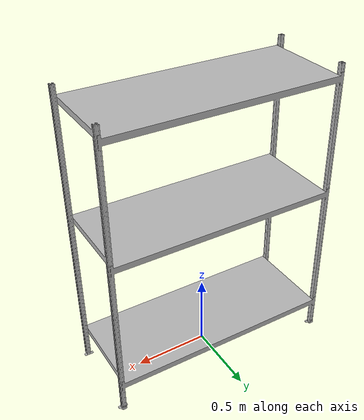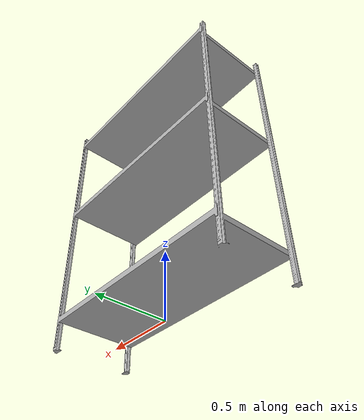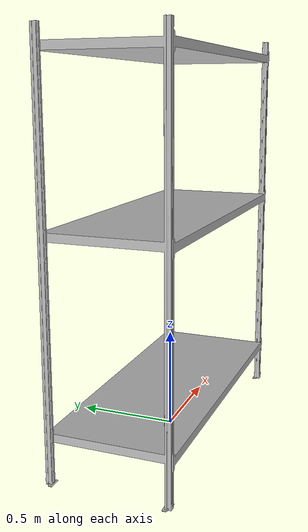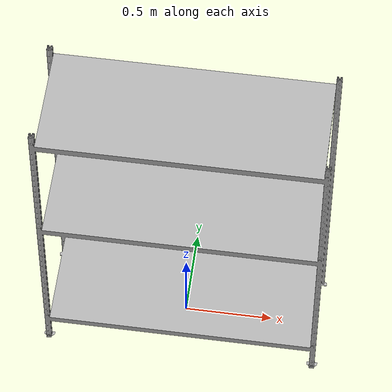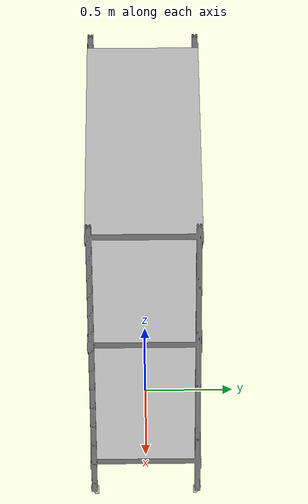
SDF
<?xml version="1.0" ?>
<sdf version="1.9">
  <model name="shelf_type_a">
    <static>false</static>

    <link name="estanteria_link">
      <pose>0 0 0 0 0 0</pose>

      <inertial>
        <pose>0 0 1.001000 0 0 0</pose>
        <mass>15.000</mass>
        <inertia>
          <ixx>5.475130</ixx>
          <ixy>0.0</ixy>
          <ixz>0.0</ixz>
          <iyy>8.170130</iyy>
          <iyz>0.0</iyz>
          <izz>3.625250</izz>
        </inertia>
      </inertial>

      <visual name="visual">
        <pose>0.121365 -0.813724 1.456763 0 0 0</pose>
        <geometry>
          <mesh>
            <uri>model://shelf_type_a/meshes/estanteria.dae</uri>
          </mesh>
        </geometry>
      </visual>

      <collision name="collision_1">
        <pose>-0.765000 -0.283500 0.015000 0 0 0</pose>
        <geometry>
          <box>
            <size>0.060000 0.043000 0.030000</size>
          </box>
        </geometry>
      </collision>

      <collision name="collision_2">
        <pose>-0.765000 0.283500 0.015000 0 0 0</pose>
        <geometry>
          <box>
            <size>0.060000 0.043000 0.030000</size>
          </box>
        </geometry>
      </collision>

      <collision name="collision_3">
        <pose>0.765000 -0.283500 0.015000 0 0 0</pose>
        <geometry>
          <box>
            <size>0.060000 0.043000 0.030000</size>
          </box>
        </geometry>
      </collision>

      <collision name="collision_4">
        <pose>0.765000 0.283500 0.015000 0 0 0</pose>
        <geometry>
          <box>
            <size>0.060000 0.043000 0.030000</size>
          </box>
        </geometry>
      </collision>

      <collision name="collision_5">
        <pose>-0.765000 -0.285000 1.002000 0 0 0</pose>
        <geometry>
          <box>
            <size>0.030000 0.030000 2.000000</size>
          </box>
        </geometry>
      </collision>

      <collision name="collision_6">
        <pose>-0.765000 0.285000 1.002000 0 0 0</pose>
        <geometry>
          <box>
            <size>0.030000 0.030000 2.000000</size>
          </box>
        </geometry>
      </collision>

      <collision name="collision_7">
        <pose>0.765000 -0.285000 1.002000 0 0 0</pose>
        <geometry>
          <box>
            <size>0.030000 0.030000 2.000000</size>
          </box>
        </geometry>
      </collision>

      <collision name="collision_8">
        <pose>0.765000 0.285000 1.002000 0 0 0</pose>
        <geometry>
          <box>
            <size>0.030000 0.030000 2.000000</size>
          </box>
        </geometry>
      </collision>

      <collision name="collision_9">
        <pose>0 0 0.213493 0 0 0</pose>
        <geometry>
          <box>
            <size>1.541180 0.610000 0.080000</size>
          </box>
        </geometry>
      </collision>

      <collision name="collision_10">
        <pose>0 0 1.125000 0 0 0</pose>
        <geometry>
          <box>
            <size>1.541180 0.610000 0.080000</size>
          </box>
        </geometry>
      </collision>

      <collision name="collision_11">
        <pose>0 0 1.910315 0 0 0</pose>
        <geometry>
          <box>
            <size>1.541180 0.610000 0.080000</size>
          </box>
        </geometry>
      </collision>
    </link>
  </model>
</sdf>
